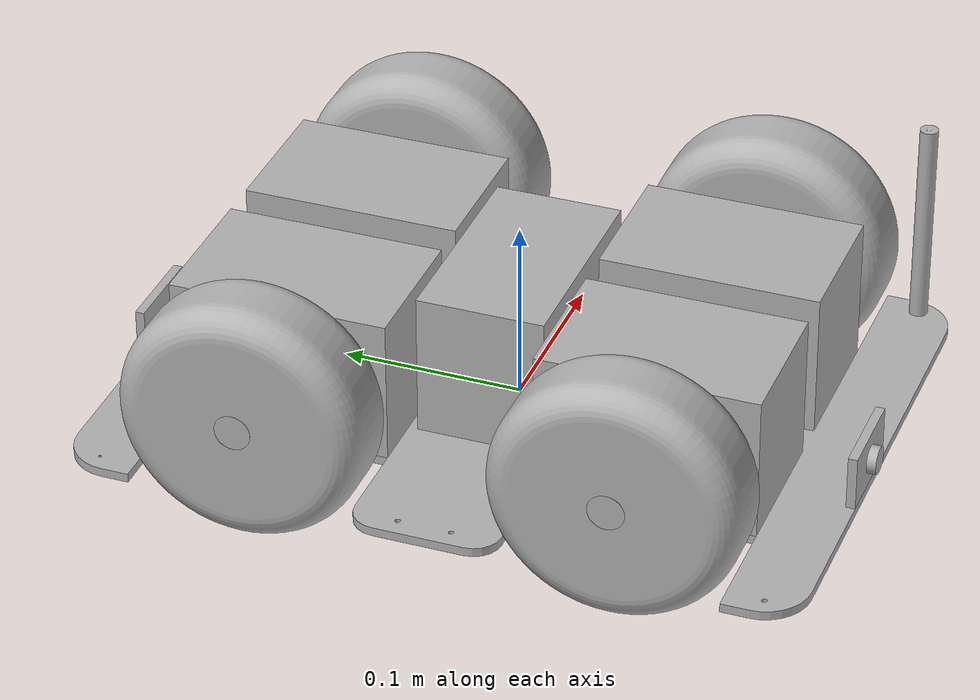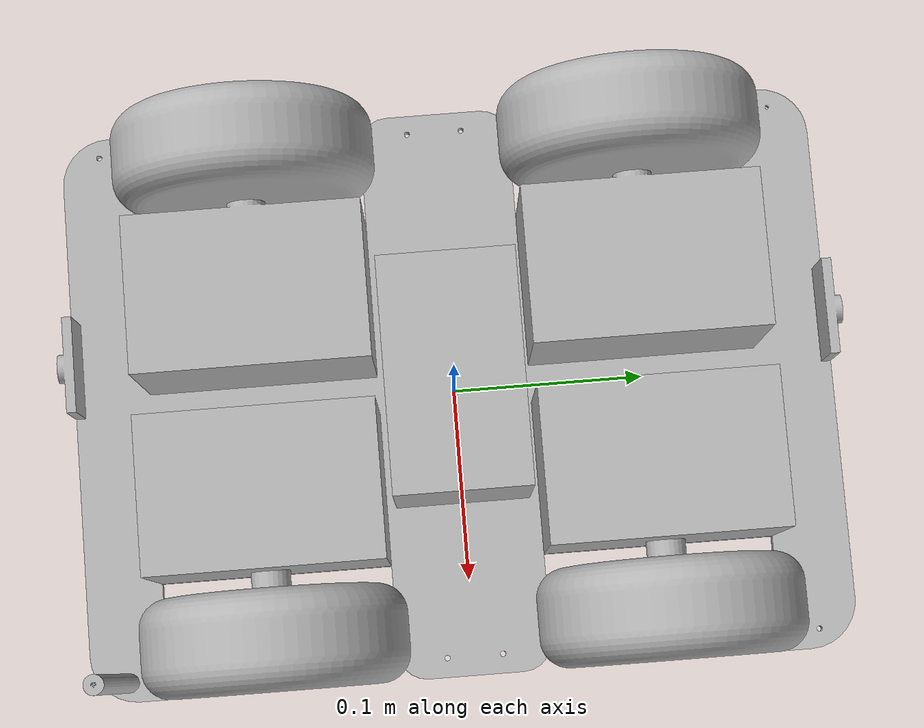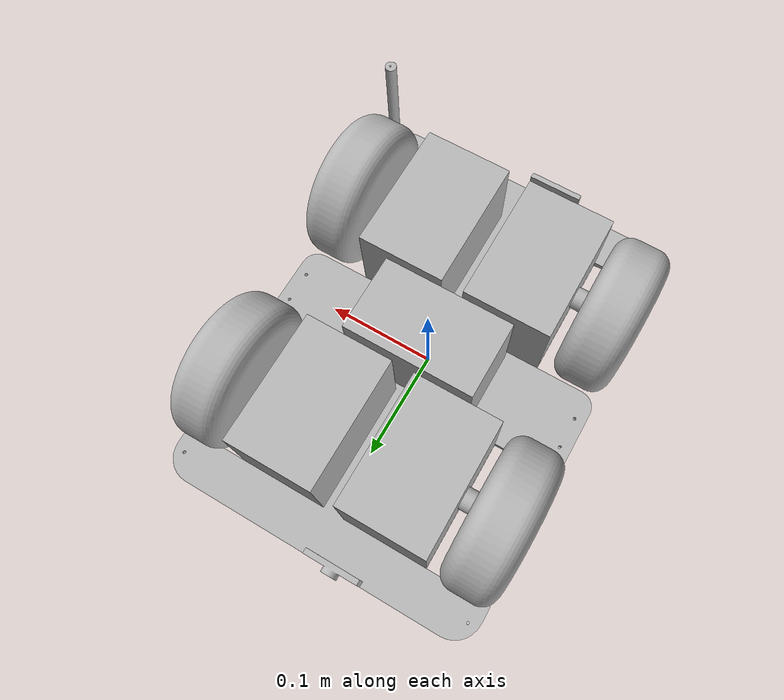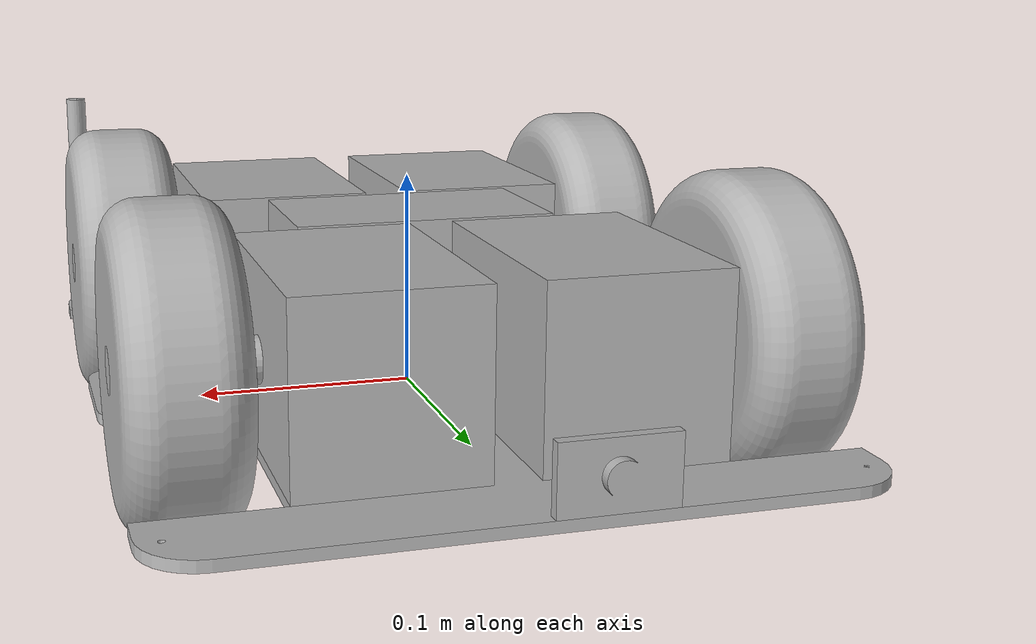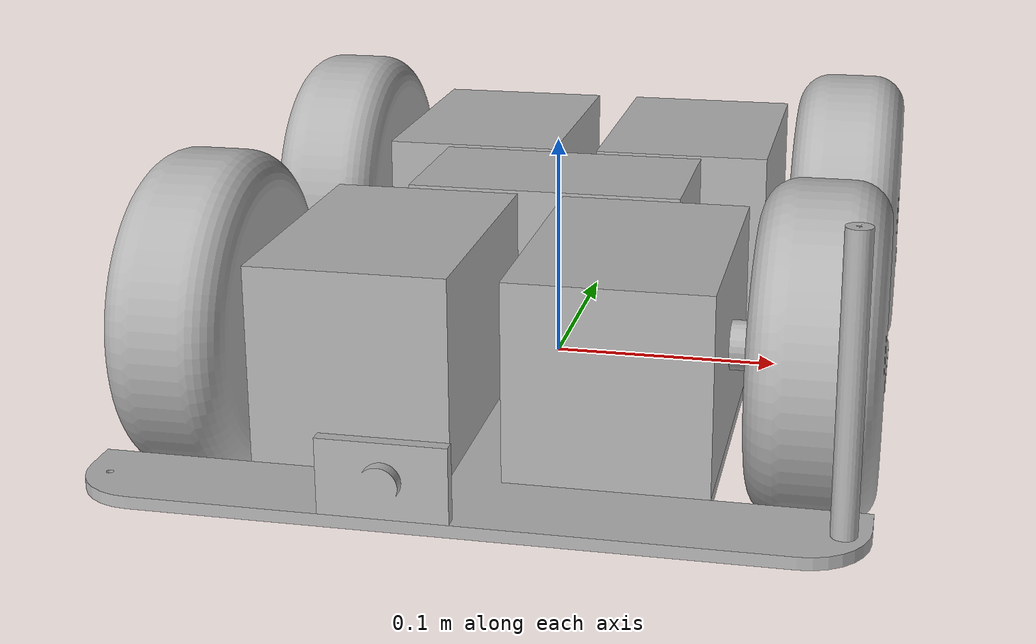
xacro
<?xml version="1.0" ?>
<robot name="robo_car" xmlns:xacro="http://www.ros.org/wiki/xacro">

<xacro:include filename="$(find robo_car_description)/urdf/materials.xacro" />
<xacro:include filename="$(find robo_car_description)/urdf/robo_car.trans" />
<xacro:include filename="$(find robo_car_description)/urdf/robo_car.gazebo" />
<link name="base_link">
  <inertial>
    <origin xyz="-1.8278008028562968e-06 2.556700843826723e-06 0.0024999996435062038" rpy="0 0 0"/>
    <mass value="3.5487922380141925"/>
    <inertia ixx="0.049306" iyy="0.01807" izz="0.067361" ixy="1e-06" iyz="0.0" ixz="-0.0"/>
  </inertial>
  <visual>
    <origin xyz="0 0 0" rpy="0 0 0"/>
    <geometry>
      <mesh filename="package://robo_car_description/meshes/base_link.stl" scale="0.001 0.001 0.001"/>
    </geometry>
    <material name="silver"/>
  </visual>
  <collision>
    <origin xyz="0 0 0" rpy="0 0 0"/>
    <geometry>
      <mesh filename="package://robo_car_description/meshes/base_link.stl" scale="0.001 0.001 0.001"/>
    </geometry>
  </collision>
</link>

<link name="left_front_spacer_1">
  <inertial>
    <origin xyz="-7.855450288307697e-07 8.690328873184328e-09 0.057499998862960436" rpy="0 0 0"/>
    <mass value="0.06549390891091923"/>
    <inertia ixx="7.3e-05" iyy="7.3e-05" izz="1e-06" ixy="0.0" iyz="0.0" ixz="0.0"/>
  </inertial>
  <visual>
    <origin xyz="-0.14 0.18 -0.005" rpy="0 0 0"/>
    <geometry>
      <mesh filename="package://robo_car_description/meshes/left_front_spacer_1.stl" scale="0.001 0.001 0.001"/>
    </geometry>
    <material name="silver"/>
  </visual>
  <collision>
    <origin xyz="-0.14 0.18 -0.005" rpy="0 0 0"/>
    <geometry>
      <mesh filename="package://robo_car_description/meshes/left_front_spacer_1.stl" scale="0.001 0.001 0.001"/>
    </geometry>
  </collision>
</link>

<link name="left_front_wheel_1">
  <inertial>
    <origin xyz="-0.02500000000000001 -2.4841240175987878e-14 0.0" rpy="0 0 0"/>
    <mass value="5.189336533290716"/>
    <inertia ixx="0.011528" iyy="0.006764" izz="0.006764" ixy="0.0" iyz="-0.0" ixz="-0.0"/>
  </inertial>
  <visual>
    <origin xyz="-0.15 0.1 -0.045" rpy="0 0 0"/>
    <geometry>
      <mesh filename="package://robo_car_description/meshes/left_front_wheel_1.stl" scale="0.001 0.001 0.001"/>
    </geometry>
    <material name="silver"/>
  </visual>
  <collision>
    <origin xyz="-0.15 0.1 -0.045" rpy="0 0 0"/>
    <geometry>
      <mesh filename="package://robo_car_description/meshes/left_front_wheel_1.stl" scale="0.001 0.001 0.001"/>
    </geometry>
  </collision>
</link>

<link name="left_back_wheel_1">
  <inertial>
    <origin xyz="-0.024999999999999967 2.4841240175987878e-14 -6.938893903907228e-18" rpy="0 0 0"/>
    <mass value="5.1893365332907155"/>
    <inertia ixx="0.011528" iyy="0.006764" izz="0.006764" ixy="0.0" iyz="-0.0" ixz="0.0"/>
  </inertial>
  <visual>
    <origin xyz="-0.15 -0.1 -0.045" rpy="0 0 0"/>
    <geometry>
      <mesh filename="package://robo_car_description/meshes/left_back_wheel_1.stl" scale="0.001 0.001 0.001"/>
    </geometry>
    <material name="silver"/>
  </visual>
  <collision>
    <origin xyz="-0.15 -0.1 -0.045" rpy="0 0 0"/>
    <geometry>
      <mesh filename="package://robo_car_description/meshes/left_back_wheel_1.stl" scale="0.001 0.001 0.001"/>
    </geometry>
  </collision>
</link>

<link name="right_back_wheel_1">
  <inertial>
    <origin xyz="0.024999999999999967 2.4841240175987878e-14 1.3877787807814457e-17" rpy="0 0 0"/>
    <mass value="5.1893365332907155"/>
    <inertia ixx="0.011528" iyy="0.006764" izz="0.006764" ixy="-0.0" iyz="0.0" ixz="-0.0"/>
  </inertial>
  <visual>
    <origin xyz="0.15 -0.1 -0.045" rpy="0 0 0"/>
    <geometry>
      <mesh filename="package://robo_car_description/meshes/right_back_wheel_1.stl" scale="0.001 0.001 0.001"/>
    </geometry>
    <material name="silver"/>
  </visual>
  <collision>
    <origin xyz="0.15 -0.1 -0.045" rpy="0 0 0"/>
    <geometry>
      <mesh filename="package://robo_car_description/meshes/right_back_wheel_1.stl" scale="0.001 0.001 0.001"/>
    </geometry>
  </collision>
</link>

<link name="right_front_wheel_1">
  <inertial>
    <origin xyz="0.024999999999999967 -2.4841240175987878e-14 -6.938893903907228e-18" rpy="0 0 0"/>
    <mass value="5.1893365332907155"/>
    <inertia ixx="0.011528" iyy="0.006764" izz="0.006764" ixy="0.0" iyz="-0.0" ixz="-0.0"/>
  </inertial>
  <visual>
    <origin xyz="0.15 0.1 -0.045" rpy="0 0 0"/>
    <geometry>
      <mesh filename="package://robo_car_description/meshes/right_front_wheel_1.stl" scale="0.001 0.001 0.001"/>
    </geometry>
    <material name="silver"/>
  </visual>
  <collision>
    <origin xyz="0.15 0.1 -0.045" rpy="0 0 0"/>
    <geometry>
      <mesh filename="package://robo_car_description/meshes/right_front_wheel_1.stl" scale="0.001 0.001 0.001"/>
    </geometry>
  </collision>
</link>

<link name="left_front_motor_1">
  <inertial>
    <origin xyz="-0.03832309886359105 2.7755575615628914e-17 0.04" rpy="0 0 0"/>
    <mass value="6.176769013984079"/>
    <inertia ixx="0.010457" iyy="0.007186" izz="0.011206" ixy="0.0" iyz="0.0" ixz="0.0"/>
  </inertial>
  <visual>
    <origin xyz="-0.09 0.1 -0.005" rpy="0 0 0"/>
    <geometry>
      <mesh filename="package://robo_car_description/meshes/left_front_motor_1.stl" scale="0.001 0.001 0.001"/>
    </geometry>
    <material name="silver"/>
  </visual>
  <collision>
    <origin xyz="-0.09 0.1 -0.005" rpy="0 0 0"/>
    <geometry>
      <mesh filename="package://robo_car_description/meshes/left_front_motor_1.stl" scale="0.001 0.001 0.001"/>
    </geometry>
  </collision>
</link>

<link name="right_front_motor_1">
  <inertial>
    <origin xyz="0.03832309886359103 2.7755575615628914e-17 0.04" rpy="0 0 0"/>
    <mass value="6.176769013984079"/>
    <inertia ixx="0.010457" iyy="0.007186" izz="0.011206" ixy="-0.0" iyz="0.0" ixz="0.0"/>
  </inertial>
  <visual>
    <origin xyz="0.09 0.1 -0.005" rpy="0 0 0"/>
    <geometry>
      <mesh filename="package://robo_car_description/meshes/right_front_motor_1.stl" scale="0.001 0.001 0.001"/>
    </geometry>
    <material name="silver"/>
  </visual>
  <collision>
    <origin xyz="0.09 0.1 -0.005" rpy="0 0 0"/>
    <geometry>
      <mesh filename="package://robo_car_description/meshes/right_front_motor_1.stl" scale="0.001 0.001 0.001"/>
    </geometry>
  </collision>
</link>

<link name="left_back_motor_1">
  <inertial>
    <origin xyz="-0.038323098863591074 -4.163336342344337e-17 0.04" rpy="0 0 0"/>
    <mass value="6.176769013984079"/>
    <inertia ixx="0.010457" iyy="0.007186" izz="0.011206" ixy="-0.0" iyz="-0.0" ixz="0.0"/>
  </inertial>
  <visual>
    <origin xyz="-0.09 -0.1 -0.005" rpy="0 0 0"/>
    <geometry>
      <mesh filename="package://robo_car_description/meshes/left_back_motor_1.stl" scale="0.001 0.001 0.001"/>
    </geometry>
    <material name="silver"/>
  </visual>
  <collision>
    <origin xyz="-0.09 -0.1 -0.005" rpy="0 0 0"/>
    <geometry>
      <mesh filename="package://robo_car_description/meshes/left_back_motor_1.stl" scale="0.001 0.001 0.001"/>
    </geometry>
  </collision>
</link>

<link name="right_back_motor_1">
  <inertial>
    <origin xyz="0.03832309886359103 -4.163336342344337e-17 0.04" rpy="0 0 0"/>
    <mass value="6.176769013984079"/>
    <inertia ixx="0.010457" iyy="0.007186" izz="0.011206" ixy="-0.0" iyz="-0.0" ixz="0.0"/>
  </inertial>
  <visual>
    <origin xyz="0.09 -0.1 -0.005" rpy="0 0 0"/>
    <geometry>
      <mesh filename="package://robo_car_description/meshes/right_back_motor_1.stl" scale="0.001 0.001 0.001"/>
    </geometry>
    <material name="silver"/>
  </visual>
  <collision>
    <origin xyz="0.09 -0.1 -0.005" rpy="0 0 0"/>
    <geometry>
      <mesh filename="package://robo_car_description/meshes/right_back_motor_1.stl" scale="0.001 0.001 0.001"/>
    </geometry>
  </collision>
</link>

<link name="battery_1">
  <inertial>
    <origin xyz="0.0 0.0 0.04" rpy="0 0 0"/>
    <mass value="5.275199999999998"/>
    <inertia ixx="0.004967" iyy="0.009144" izz="0.008484" ixy="0.0" iyz="0.0" ixz="0.0"/>
  </inertial>
  <visual>
    <origin xyz="-0.0 -0.0 -0.005" rpy="0 0 0"/>
    <geometry>
      <mesh filename="package://robo_car_description/meshes/battery_1.stl" scale="0.001 0.001 0.001"/>
    </geometry>
    <material name="silver"/>
  </visual>
  <collision>
    <origin xyz="-0.0 -0.0 -0.005" rpy="0 0 0"/>
    <geometry>
      <mesh filename="package://robo_car_description/meshes/battery_1.stl" scale="0.001 0.001 0.001"/>
    </geometry>
  </collision>
</link>

<link name="front_right_sensor_base_1">
  <inertial>
    <origin xyz="-0.024999999999917342 0.0019730331919356747 0.015" rpy="0 0 0"/>
    <mass value="0.06581104753050401"/>
    <inertia ixx="5e-06" iyy="1.7e-05" izz="1.3e-05" ixy="0.0" iyz="0.0" ixz="0.0"/>
  </inertial>
  <visual>
    <origin xyz="-0.0 0.2 -0.005" rpy="0 0 0"/>
    <geometry>
      <mesh filename="package://robo_car_description/meshes/front_right_sensor_base_1.stl" scale="0.001 0.001 0.001"/>
    </geometry>
    <material name="silver"/>
  </visual>
  <collision>
    <origin xyz="-0.0 0.2 -0.005" rpy="0 0 0"/>
    <geometry>
      <mesh filename="package://robo_car_description/meshes/front_right_sensor_base_1.stl" scale="0.001 0.001 0.001"/>
    </geometry>
  </collision>
</link>

<link name="back_right_sensor_base_1">
  <inertial>
    <origin xyz="-0.025000000000082657 -0.0019730331919356747 0.015" rpy="0 0 0"/>
    <mass value="0.0658110475305034"/>
    <inertia ixx="5e-06" iyy="1.7e-05" izz="1.3e-05" ixy="-0.0" iyz="0.0" ixz="-0.0"/>
  </inertial>
  <visual>
    <origin xyz="-0.0 -0.2 -0.005" rpy="0 0 0"/>
    <geometry>
      <mesh filename="package://robo_car_description/meshes/back_right_sensor_base_1.stl" scale="0.001 0.001 0.001"/>
    </geometry>
    <material name="silver"/>
  </visual>
  <collision>
    <origin xyz="-0.0 -0.2 -0.005" rpy="0 0 0"/>
    <geometry>
      <mesh filename="package://robo_car_description/meshes/back_right_sensor_base_1.stl" scale="0.001 0.001 0.001"/>
    </geometry>
  </collision>
</link>

<joint name="left_front_spacer_bottom_joint" type="fixed">
  <origin xyz="0.14 -0.18 0.005" rpy="0 0 0"/>
  <parent link="base_link"/>
  <child link="left_front_spacer_1"/>
</joint>

<joint name="lef_front_wheel_joint" type="continuous">
  <origin xyz="0.06 0.0 0.04" rpy="0 0 0"/>
  <parent link="left_front_motor_1"/>
  <child link="left_front_wheel_1"/>
  <axis xyz="1.0 0.0 0.0"/>
</joint>

<joint name="left_back_wheel_joint" type="continuous">
  <origin xyz="0.06 0.0 0.04" rpy="0 0 0"/>
  <parent link="left_back_motor_1"/>
  <child link="left_back_wheel_1"/>
  <axis xyz="1.0 0.0 0.0"/>
</joint>

<joint name="right_back_wheel_joint" type="continuous">
  <origin xyz="-0.06 0.0 0.04" rpy="0 0 0"/>
  <parent link="right_back_motor_1"/>
  <child link="right_back_wheel_1"/>
  <axis xyz="-1.0 0.0 0.0"/>
</joint>

<joint name="right_front_wheel_joint" type="continuous">
  <origin xyz="-0.06 0.0 0.04" rpy="0 0 0"/>
  <parent link="right_front_motor_1"/>
  <child link="right_front_wheel_1"/>
  <axis xyz="-1.0 0.0 0.0"/>
</joint>

<joint name="left_front_motor_joint" type="fixed">
  <origin xyz="0.09 -0.1 0.005" rpy="0 0 0"/>
  <parent link="base_link"/>
  <child link="left_front_motor_1"/>
</joint>

<joint name="right_front_motor_joint" type="fixed">
  <origin xyz="-0.09 -0.1 0.005" rpy="0 0 0"/>
  <parent link="base_link"/>
  <child link="right_front_motor_1"/>
</joint>

<joint name="left_back_motor_joint" type="fixed">
  <origin xyz="0.09 0.1 0.005" rpy="0 0 0"/>
  <parent link="base_link"/>
  <child link="left_back_motor_1"/>
</joint>

<joint name="right_back_motor_joint" type="fixed">
  <origin xyz="-0.09 0.1 0.005" rpy="0 0 0"/>
  <parent link="base_link"/>
  <child link="right_back_motor_1"/>
</joint>

<joint name="battery_joint" type="fixed">
  <origin xyz="0.0 0.0 0.005" rpy="0 0 0"/>
  <parent link="base_link"/>
  <child link="battery_1"/>
</joint>

<joint name="front_right_sensor_base_joint" type="fixed">
  <origin xyz="0.0 -0.2 0.005" rpy="0 0 0"/>
  <parent link="base_link"/>
  <child link="front_right_sensor_base_1"/>
</joint>

<joint name="back_right_sensor_base_joint" type="fixed">
  <origin xyz="0.0 0.2 0.005" rpy="0 0 0"/>
  <parent link="base_link"/>
  <child link="back_right_sensor_base_1"/>
</joint>

</robot>

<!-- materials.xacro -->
<robot name="robo_car" xmlns:xacro="http://www.ros.org/wiki/xacro" >

<material name="silver">
  <color rgba="0.700 0.700 0.700 1.000"/>
</material>

</robot>

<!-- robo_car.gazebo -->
<robot name="robo_car" xmlns:xacro="http://www.ros.org/wiki/xacro" >

<xacro:property name="body_color" value="Gazebo/Silver" />

<gazebo>
  <plugin name="control" filename="libgazebo_ros_control.so"/>
</gazebo>
<gazebo reference="base_link">
  <material>${body_color}</material>
  <mu1>0.2</mu1>
  <mu2>0.2</mu2>
  <selfCollide>true</selfCollide>
  <gravity>true</gravity>
</gazebo>

<gazebo reference="left_front_spacer_1">
  <material>${body_color}</material>
  <mu1>0.2</mu1>
  <mu2>0.2</mu2>
  <selfCollide>true</selfCollide>
</gazebo>

<gazebo reference="left_front_wheel_1">
  <material>${body_color}</material>
  <mu1>0.2</mu1>
  <mu2>0.2</mu2>
  <selfCollide>true</selfCollide>
</gazebo>

<gazebo reference="left_back_wheel_1">
  <material>${body_color}</material>
  <mu1>0.2</mu1>
  <mu2>0.2</mu2>
  <selfCollide>true</selfCollide>
</gazebo>

<gazebo reference="right_back_wheel_1">
  <material>${body_color}</material>
  <mu1>0.2</mu1>
  <mu2>0.2</mu2>
  <selfCollide>true</selfCollide>
</gazebo>

<gazebo reference="right_front_wheel_1">
  <material>${body_color}</material>
  <mu1>0.2</mu1>
  <mu2>0.2</mu2>
  <selfCollide>true</selfCollide>
</gazebo>

<gazebo reference="left_front_motor_1">
  <material>${body_color}</material>
  <mu1>0.2</mu1>
  <mu2>0.2</mu2>
  <selfCollide>true</selfCollide>
</gazebo>

<gazebo reference="right_front_motor_1">
  <material>${body_color}</material>
  <mu1>0.2</mu1>
  <mu2>0.2</mu2>
  <selfCollide>true</selfCollide>
</gazebo>

<gazebo reference="left_back_motor_1">
  <material>${body_color}</material>
  <mu1>0.2</mu1>
  <mu2>0.2</mu2>
  <selfCollide>true</selfCollide>
</gazebo>

<gazebo reference="right_back_motor_1">
  <material>${body_color}</material>
  <mu1>0.2</mu1>
  <mu2>0.2</mu2>
  <selfCollide>true</selfCollide>
</gazebo>

<gazebo reference="battery_1">
  <material>${body_color}</material>
  <mu1>0.2</mu1>
  <mu2>0.2</mu2>
  <selfCollide>true</selfCollide>
</gazebo>

<gazebo reference="front_right_sensor_base_1">
  <material>${body_color}</material>
  <mu1>0.2</mu1>
  <mu2>0.2</mu2>
  <selfCollide>true</selfCollide>
</gazebo>

<gazebo reference="back_right_sensor_base_1">
  <material>${body_color}</material>
  <mu1>0.2</mu1>
  <mu2>0.2</mu2>
  <selfCollide>true</selfCollide>
</gazebo>

</robot>
